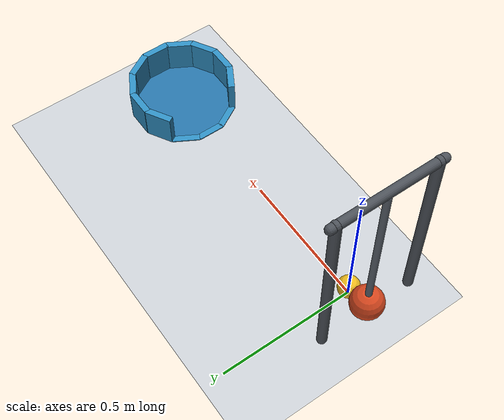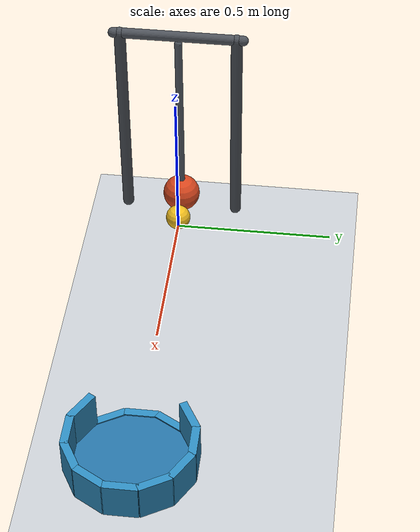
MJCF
<mujoco model="pendulum_ball_into_cup">
  <compiler angle="degree" inertiafromgeom="true"/>
  <option timestep="0.002" gravity="0 0 -9.81" integrator="implicitfast" iterations="80"/>
  <size njmax="200" nconmax="100"/>

  <visual>
    <global azimuth="120" elevation="-25"/>
    <headlight ambient="0.4 0.4 0.4" diffuse="0.7 0.7 0.7" specular="0.2 0.2 0.2"/>
  </visual>

  <worldbody>
    <light name="light" pos="0.5 -1 3" dir="0 0 -1"/>
    <geom name="floor" type="plane" size="3 2 0.1" pos="0 0 0" condim="6" friction="0.6 0.002 0.00015" solref="0.01 1" solimp="0.95 0.99 0.001" rgba="0.78 0.80 0.82 1"/>

    <body name="frame" pos="-0.09 0 0">
      <geom name="frame_left_post" type="capsule" fromto="0 -0.18 0.02 0 -0.18 0.70" size="0.018" contype="0" conaffinity="0" rgba="0.3 0.32 0.35 1"/>
      <geom name="frame_right_post" type="capsule" fromto="0 0.18 0.02 0 0.18 0.70" size="0.018" contype="0" conaffinity="0" rgba="0.3 0.32 0.35 1"/>
      <geom name="frame_axle" type="capsule" fromto="0 -0.20 0.70 0 0.20 0.70" size="0.016" contype="0" conaffinity="0" rgba="0.3 0.32 0.35 1"/>
    </body>

    <body name="pendulum" pos="-0.09 0 0.70">
      <joint name="pendulum_hinge" type="hinge" axis="0 1 0" limited="true" range="-35 35" damping="0.015"/>
      <geom name="pendulum_rod" type="capsule" fromto="0 0 -0.025 0 0 -0.58" size="0.012" mass="0.025" friction="0.4 0.001 0.0001" rgba="0.35 0.38 0.42 1"/>
      <geom name="pendulum_bob" type="sphere" pos="0 0 -0.63" size="0.06" mass="0.4" condim="6" friction="0.4 0.001 0.0001" solref="0.008 1" solimp="0.95 0.99 0.001" rgba="0.85 0.28 0.12 1"/>
    </body>

    <body name="ball" pos="0 0 0.04">
      <freejoint name="ball_free"/>
      <geom name="ball" type="sphere" size="0.04" mass="0.08" condim="6" friction="0.6 0.002 0.00015" solref="0.008 1" solimp="0.95 0.99 0.001" rgba="0.95 0.75 0.12 1"/>
    </body>

    <body name="cup" pos="1 0 0">
      <geom name="cup_base" type="cylinder" pos="0 0 0.002" size="0.18 0.002" condim="6" friction="0.8 0.01 0.006" solref="0.01 1" solimp="0.95 0.99 0.001" rgba="0.15 0.45 0.65 1"/>
      <geom name="cup_wall_0" type="box" pos="0.18 0 0.064" size="0.012 0.05 0.06" euler="0 0 0" condim="6" friction="0.8 0.01 0.006" solref="0.012 1" rgba="0.18 0.55 0.75 1"/>
      <geom name="cup_wall_30" type="box" pos="0.155885 0.09 0.064" size="0.012 0.05 0.06" euler="0 0 30" condim="6" friction="0.8 0.01 0.006" solref="0.012 1" rgba="0.18 0.55 0.75 1"/>
      <geom name="cup_wall_60" type="box" pos="0.09 0.155885 0.064" size="0.012 0.05 0.06" euler="0 0 60" condim="6" friction="0.8 0.01 0.006" solref="0.012 1" rgba="0.18 0.55 0.75 1"/>
      <geom name="cup_wall_90" type="box" pos="0 0.18 0.064" size="0.012 0.05 0.06" euler="0 0 90" condim="6" friction="0.8 0.01 0.006" solref="0.012 1" rgba="0.18 0.55 0.75 1"/>
      <geom name="cup_wall_120" type="box" pos="-0.09 0.155885 0.064" size="0.012 0.05 0.06" euler="0 0 120" condim="6" friction="0.8 0.01 0.006" solref="0.012 1" rgba="0.18 0.55 0.75 1"/>
      <geom name="cup_entry_150" type="box" pos="-0.155885 0.09 0.006" size="0.012 0.05 0.002" euler="0 0 150" condim="6" friction="0.5 0.002 0.00015" solref="0.01 1" rgba="0.18 0.55 0.75 1"/>
      <geom name="cup_entry_180" type="box" pos="-0.18 0 0.006" size="0.012 0.05 0.002" euler="0 0 180" condim="6" friction="0.5 0.002 0.00015" solref="0.01 1" rgba="0.18 0.55 0.75 1"/>
      <geom name="cup_entry_210" type="box" pos="-0.155885 -0.09 0.006" size="0.012 0.05 0.002" euler="0 0 210" condim="6" friction="0.5 0.002 0.00015" solref="0.01 1" rgba="0.18 0.55 0.75 1"/>
      <geom name="cup_wall_240" type="box" pos="-0.09 -0.155885 0.064" size="0.012 0.05 0.06" euler="0 0 240" condim="6" friction="0.8 0.01 0.006" solref="0.012 1" rgba="0.18 0.55 0.75 1"/>
      <geom name="cup_wall_270" type="box" pos="0 -0.18 0.064" size="0.012 0.05 0.06" euler="0 0 270" condim="6" friction="0.8 0.01 0.006" solref="0.012 1" rgba="0.18 0.55 0.75 1"/>
      <geom name="cup_wall_300" type="box" pos="0.09 -0.155885 0.064" size="0.012 0.05 0.06" euler="0 0 300" condim="6" friction="0.8 0.01 0.006" solref="0.012 1" rgba="0.18 0.55 0.75 1"/>
      <geom name="cup_wall_330" type="box" pos="0.155885 -0.09 0.064" size="0.012 0.05 0.06" euler="0 0 330" condim="6" friction="0.8 0.01 0.006" solref="0.012 1" rgba="0.18 0.55 0.75 1"/>
    </body>
  </worldbody>

  <keyframe>
    <key name="start" qpos="0.4 0 0 0.04 1 0 0 0" qvel="0 0 0 0 0 0 0"/>
  </keyframe>
</mujoco>
